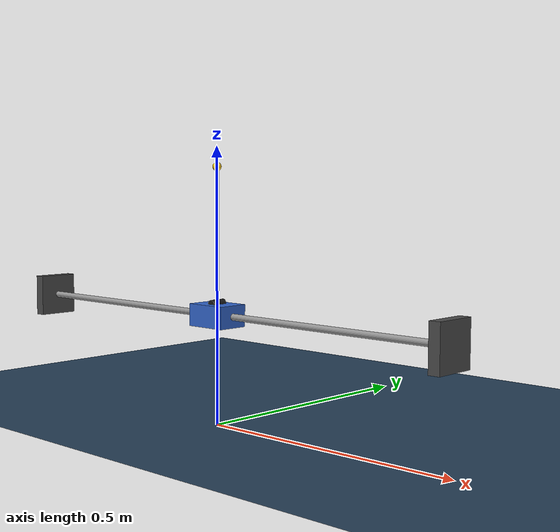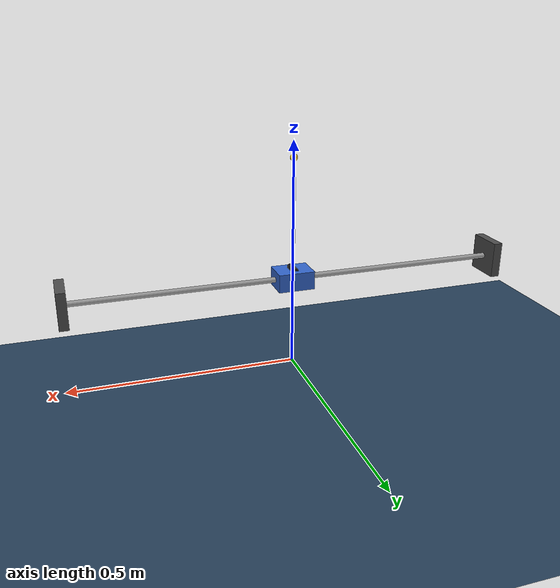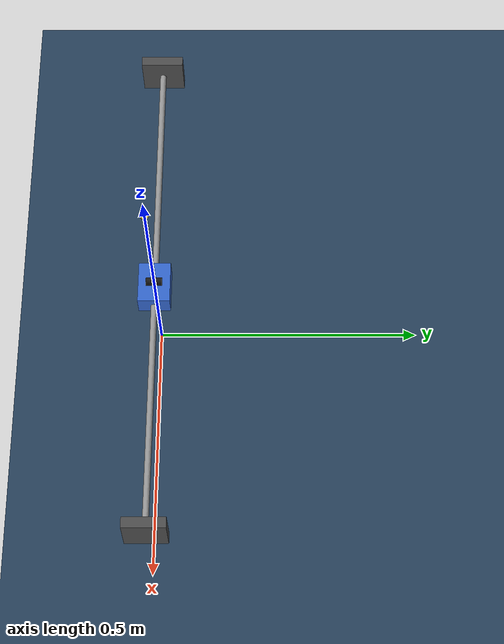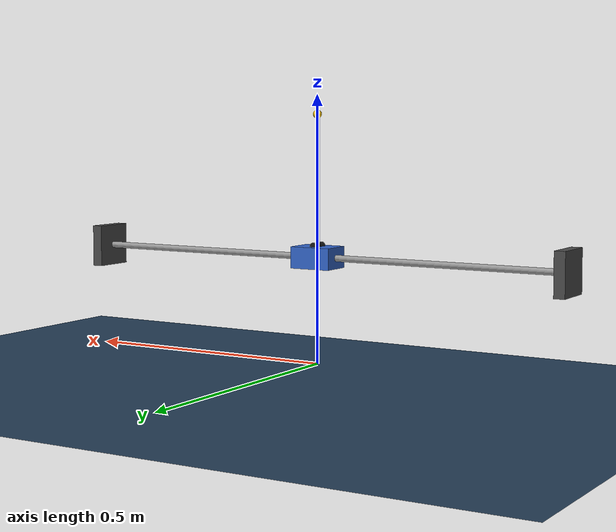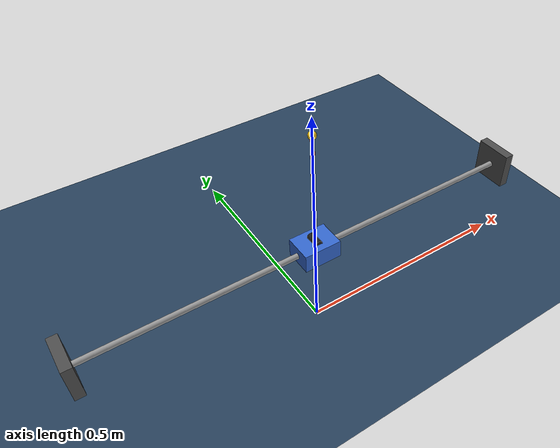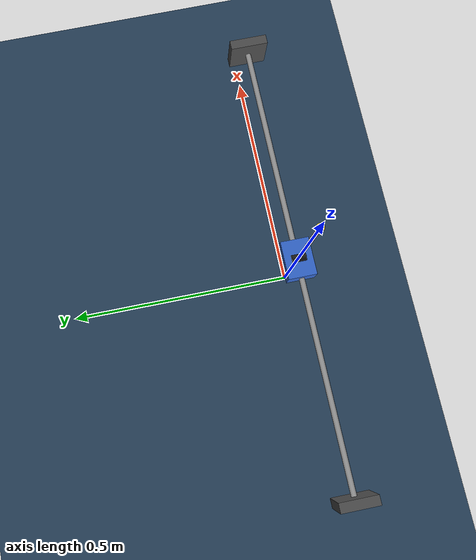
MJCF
<mujoco model="full_pendulum_assem">
  <compiler angle="radian" coordinate="local"/>
  <size memory="10000000"/>

  <option timestep="0.002" gravity="0 0 -9.81" integrator="RK4"/>

  <asset>
    <material name="grid"      rgba="0.15 0.25 0.35 1"/>
    <material name="cart_mat"  rgba="0.2 0.4 0.8 1"/>
    <material name="pole_mat"  rgba="0.9 0.2 0.2 1"/>
    <material name="rail_mat"  rgba="0.6 0.6 0.6 0.9"/>
    <material name="hinge_mat" rgba="0.1 0.1 0.1 1"/>
  </asset>

  <worldbody>
    <geom name="floor" type="plane" size="2 2 0.1" material="grid" contype="0" conaffinity="0"/>

    <!-- Rail: chinh xac 0.4875 m moi ben (tong 0.975 m) tu worldframe trong full_pendulum_assem.xml -->
    <geom name="rail"       type="capsule" fromto="-0.4875 0 0.2 0.4875 0 0.2" size="0.006" material="rail_mat" contype="0" conaffinity="0"/>
    <geom name="left_stop"  type="box" pos="-0.4875 0 0.2" size="0.01 0.04 0.04" rgba="0.3 0.3 0.3 1" contype="0" conaffinity="0"/>
    <geom name="right_stop" type="box" pos=" 0.4875 0 0.2" size="0.01 0.04 0.04" rgba="0.3 0.3 0.3 1" contype="0" conaffinity="0"/>

    <!-- Cart Body - Thong so chinh xac tu SolidWorks full_pendulum_assem.xml -->
    <!-- Mass = 0.05911769838837861 kg -->
    <!-- CoM  = [0, 0, -0.0084268671803051261] m -->
    <!-- Inertia (Ixx,Iyy,Izz) = [2.1955e-5, 5.8487e-5, 6.5129e-5] kg.m^2 -->
    <body name="cart" pos="0 0 0.2">
      <inertial pos="0 0 -0.0084269"
                mass="0.05911770"
                diaginertia="2.1955e-5 5.8487e-5 6.5129e-5"/>
      <joint name="cart_slider" type="slide" axis="1 0 0"
             range="-0.45 0.45" damping="0.05" frictionloss="0.01"/>
      <geom name="cart_geom"         type="box"      size="0.04 0.03 0.02" material="cart_mat"  contype="0" conaffinity="0"/>
      <geom name="cart_hinge_bearing" type="cylinder" size="0.008 0.015" pos="0 0 0.02"
            quat="0.7071 0.7071 0 0" material="hinge_mat" contype="0" conaffinity="0"/>

      <!-- Pole Body - Thong so chinh xac tu SolidWorks full_pendulum_assem.xml -->
      <!-- Mass = 0.019633826078982265 kg -->
      <!-- CoM  = 0.11062852776227509 m doc theo truc con lac -->
      <!-- I_com (truc x) = 1.9733090023537565e-4 kg.m^2 -->
      <!-- I_zz (quay quanh truc) = 1.1898645849201206e-5 kg.m^2 -->
      <body name="pole" pos="0 0 0.02">
        <inertial pos="0 0 0.11062853"
                  mass="0.01963383"
                  diaginertia="1.9733e-4 1.9733e-4 1.1899e-5"/>
        <joint name="pole_hinge" type="hinge" axis="0 1 0"
               damping="0.0003" frictionloss="0.00005"/>
        <!-- Pole visual: dai 0.244 m (uoc tinh tu COM = 0.1106 m) -->
        <geom name="pole_geom" type="capsule" fromto="0 0 0 0 0 0.244" size="0.004" material="pole_mat" contype="0" conaffinity="0"/>
        <geom name="pole_tip"  type="sphere"  pos="0 0 0.244" size="0.008" rgba="1 0.8 0.1 1"           contype="0" conaffinity="0"/>
      </body>
    </body>
  </worldbody>

  <actuator>
    <!-- Luc day theo ray, bao hoa +/-10 N -->
    <motor name="cart_force" joint="cart_slider" gear="1" ctrllimited="true" ctrlrange="-10 10"/>
  </actuator>

</mujoco>
